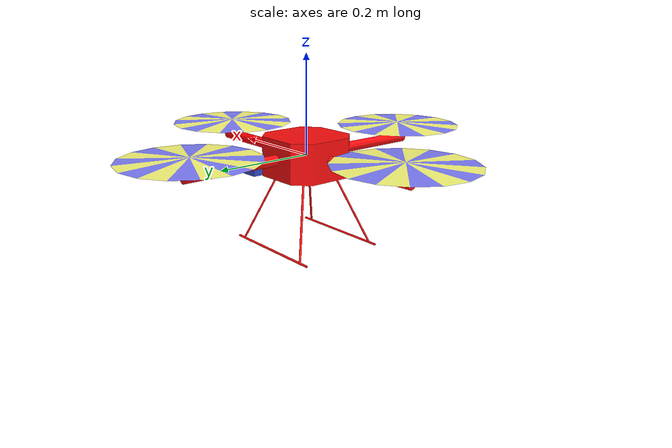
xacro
<?xml version="1.0"?>
<robot name="quadrotor" xmlns:xacro="http://ros.org/wiki/xacro">

  <!-- Include base Hector Quadrotor -->
  <xacro:include filename="$(find hector_quadrotor_description)/urdf/quadrotor_base.urdf.xacro" />

  <!-- Instantiate the base quadrotor macro -->
  <xacro:quadrotor_base_macro />

  <!-- Properties for camera -->
  <xacro:property name="camera_mass" value="0.01" />
  <xacro:property name="camera_size" value="0.05" />

  <!-- Depth Camera Link -->
  <link name="camera_link">
    <inertial>
      <mass value="${camera_mass}" />
      <origin xyz="0 0 0" rpy="0 0 0"/>
      <inertia ixx="1e-6" ixy="0" ixz="0" iyy="1e-6" iyz="0" izz="1e-6" />
    </inertial>

    <visual>
      <origin xyz="0 0 0" rpy="0 0 0"/>
      <geometry>
        <box size="${camera_size} 0.08 0.03"/>
      </geometry>
      <material name="camera_blue">
        <color rgba="0.2 0.3 0.8 1.0"/>
      </material>
    </visual>

    <collision>
      <origin xyz="0 0 0" rpy="0 0 0"/>
      <geometry>
        <box size="${camera_size} 0.08 0.03"/>
      </geometry>
    </collision>
  </link>

  <!-- Attach camera to quadrotor base -->
  <joint name="camera_joint" type="fixed">
    <parent link="base_link"/>
    <child link="camera_link"/>
    <!-- Forward-facing, slightly below center -->
    <origin xyz="0.15 0 -0.05" rpy="0 0 0"/>
  </joint>

  <!-- Camera Optical Frame (standard ROS camera frame convention) -->
  <link name="camera_depth_optical_frame"/>

  <joint name="camera_optical_joint" type="fixed">
    <parent link="camera_link"/>
    <child link="camera_depth_optical_frame"/>
    <!-- Rotate to optical frame: x=right, y=down, z=forward -->
    <origin xyz="0 0 0" rpy="${-pi/2} 0 ${-pi/2}"/>
  </joint>

  <!-- Gazebo Kinect Plugin -->
  <gazebo reference="camera_link">
    <sensor type="depth" name="camera">
      <always_on>true</always_on>
      <update_rate>30.0</update_rate>
      <camera>
        <horizontal_fov>1.5708</horizontal_fov> <!-- 90 degrees - wider FOV for better obstacle detection -->
        <image>
          <width>640</width>
          <height>480</height>
          <format>R8G8B8</format>
        </image>
        <clip>
          <near>0.2</near>
          <far>8.0</far>  <!-- Increased for better lookahead -->
        </clip>
        <noise>
          <type>gaussian</type>
          <mean>0.0</mean>
          <stddev>0.007</stddev>
        </noise>
      </camera>

      <plugin name="kinect_camera_controller" filename="libgazebo_ros_openni_kinect.so">
        <alwaysOn>true</alwaysOn>
        <updateRate>30.0</updateRate>
        <cameraName>camera</cameraName>
        <imageTopicName>/camera/rgb/image_raw</imageTopicName>
        <cameraInfoTopicName>/camera/rgb/camera_info</cameraInfoTopicName>
        <depthImageTopicName>/camera/depth/image_raw</depthImageTopicName>
        <depthImageCameraInfoTopicName>/camera/depth/camera_info</depthImageCameraInfoTopicName>
        <pointCloudTopicName>/camera/depth/points</pointCloudTopicName>
        <frameName>camera_depth_optical_frame</frameName>
        <pointCloudCutoff>0.2</pointCloudCutoff>
        <pointCloudCutoffMax>8.0</pointCloudCutoffMax>  <!-- Match camera far clip -->

        <!-- Camera intrinsics for 90-degree FOV -->
        <CxPrime>320.0</CxPrime>
        <Cx>320.0</Cx>
        <Cy>240.0</Cy>
        <focalLength>320.0</focalLength>
        <hackBaseline>0.0</hackBaseline>

        <!-- Distortion parameters (zero for ideal camera) -->
        <distortionK1>0.0</distortionK1>
        <distortionK2>0.0</distortionK2>
        <distortionK3>0.0</distortionK3>
        <distortionT1>0.0</distortionT1>
        <distortionT2>0.0</distortionT2>
      </plugin>
    </sensor>

    <material>Gazebo/Blue</material>
  </gazebo>

  <!-- Ground Truth Odometry Plugin -->
  <gazebo>
    <plugin name="ground_truth_odometry" filename="libgazebo_ros_p3d.so">
      <alwaysOn>true</alwaysOn>
      <updateRate>100.0</updateRate>
      <bodyName>base_link</bodyName>
      <topicName>/ground_truth/state</topicName>
      <gaussianNoise>0.0</gaussianNoise>
      <frameName>world</frameName>
      <xyzOffsets>0 0 0</xyzOffsets>
      <rpyOffsets>0 0 0</rpyOffsets>
    </plugin>
  </gazebo>

  <!-- Gazebo ROS Control Plugin for Hector Controllers -->
  <gazebo>
    <plugin name="gazebo_ros_control" filename="libgazebo_ros_control.so">
      <robotNamespace>/</robotNamespace>
      <robotSimType>hector_quadrotor_controller_gazebo/QuadrotorHardwareSim</robotSimType>
    </plugin>
  </gazebo>

</robot>

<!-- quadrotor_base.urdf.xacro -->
<robot xmlns:xacro="http://www.ros.org/wiki/xacro">

  <xacro:property name="pi" value="3.1415926535897931" />

  <!-- Main quadrotor link -->
  <xacro:macro name="quadrotor_base_macro">
    <link name="base_link">
      <inertial>
        <mass value="1.477" />
        <origin xyz="0 0 0" />
        <inertia ixx="0.01152" ixy="0.0" ixz="0.0" iyy="0.01152" iyz="0.0" izz="0.0218" />
      </inertial>

      <visual>
        <origin xyz="0 0 0" rpy="0 0 0" />
        <geometry>
          <mesh filename="package://hector_quadrotor_description/meshes/quadrotor/quadrotor_base.dae"/>
        </geometry>
      </visual>

      <collision>
        <origin xyz="0 0 0" rpy="0 0 0" />
        <geometry>
          <mesh filename="package://hector_quadrotor_description/meshes/quadrotor/quadrotor_base.stl"/>
        </geometry>
      </collision>
    </link>

    <!-- Sonar height sensor -->

  </xacro:macro>
</robot>
